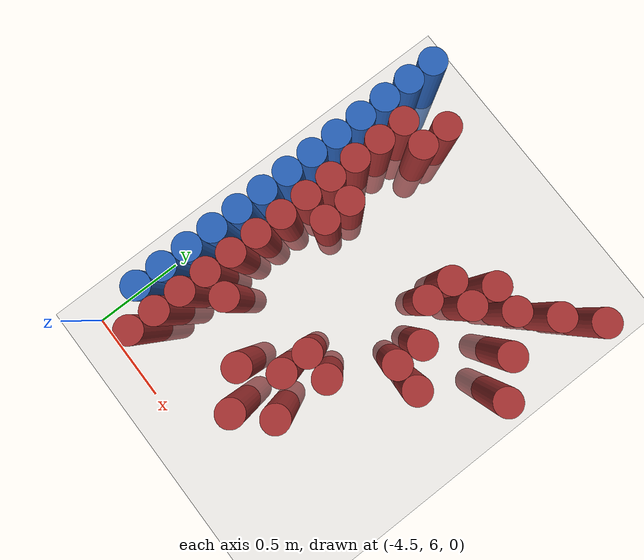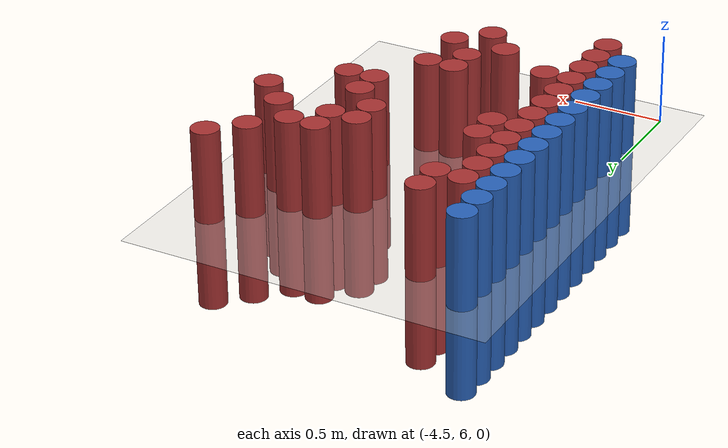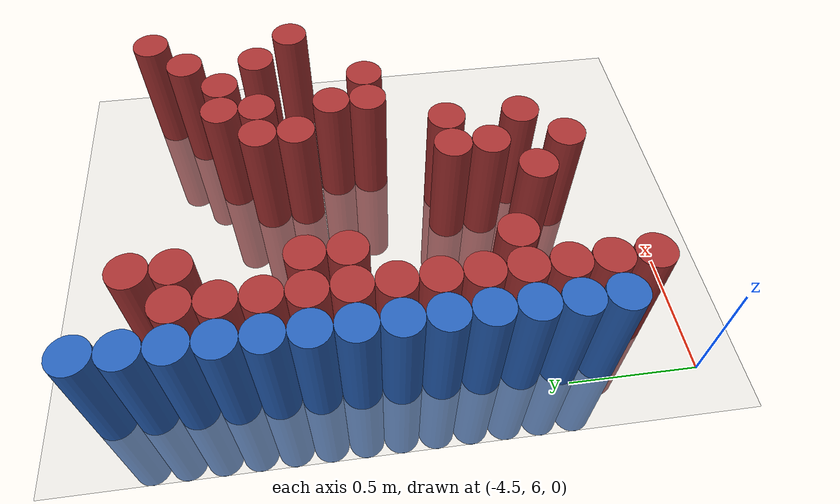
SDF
<sdf version="1.6">
 <world name="default">
  <model name="ground_plane">
   <static>1</static>
   <link name="link">
    <collision name="collision">
     <geometry><plane><normal>0 0 1</normal><size>100 100</size></plane></geometry>
     <surface><friction><ode><mu>100</mu><mu2>50</mu2></ode></friction></surface>
    </collision>
    <visual name="visual">
     <cast_shadows>0</cast_shadows>
     <geometry><plane><normal>0 0 1</normal><size>100 100</size></plane></geometry>
     <material>
      <script><uri>file://media/materials/scripts/gazebo.material</uri><name>Gazebo/Grey</name></script>
     </material>
    </visual>
   </link>
  </model>
  <model name="unit_cylinder_104">
   <static>1</static>
   <pose>-4.425000 6.375000 0.000000 0.000000 0.000000 0.000000</pose>
   <link name="link">
    <inertial>
     <mass>1</mass>
     <inertia><ixx>0.145833</ixx><ixy>0</ixy><ixz>0</ixz><iyy>0.145833</iyy><iyz>0</iyz><izz>0.125</izz></inertia>
    </inertial>
    <collision name="collision">
     <geometry><cylinder><radius>0.075000</radius><length>1</length></cylinder></geometry>
    </collision>
    <visual name="visual">
     <geometry><cylinder><radius>0.075000</radius><length>1</length></cylinder></geometry>
     <material>
      <ambient>0.152000 0.379000 0.720000 1</ambient>
      <diffuse>0.152000 0.379000 0.720000 1</diffuse>
     </material>
     <material>
      <script><name>Gazebo/Grey</name><uri>file://media/materials/scripts/gazebo.material</uri></script>
     </material>
    </visual>
   </link>
  </model>
  <model name="unit_cylinder_105">
   <static>1</static>
   <pose>-4.425000 6.525000 0.000000 0.000000 0.000000 0.000000</pose>
   <link name="link">
    <inertial>
     <mass>1</mass>
     <inertia><ixx>0.145833</ixx><ixy>0</ixy><ixz>0</ixz><iyy>0.145833</iyy><iyz>0</iyz><izz>0.125</izz></inertia>
    </inertial>
    <collision name="collision">
     <geometry><cylinder><radius>0.075000</radius><length>1</length></cylinder></geometry>
    </collision>
    <visual name="visual">
     <geometry><cylinder><radius>0.075000</radius><length>1</length></cylinder></geometry>
     <material>
      <ambient>0.152000 0.379000 0.720000 1</ambient>
      <diffuse>0.152000 0.379000 0.720000 1</diffuse>
     </material>
     <material>
      <script><name>Gazebo/Grey</name><uri>file://media/materials/scripts/gazebo.material</uri></script>
     </material>
    </visual>
   </link>
  </model>
  <model name="unit_cylinder_106">
   <static>1</static>
   <pose>-4.425000 6.675000 0.000000 0.000000 0.000000 0.000000</pose>
   <link name="link">
    <inertial>
     <mass>1</mass>
     <inertia><ixx>0.145833</ixx><ixy>0</ixy><ixz>0</ixz><iyy>0.145833</iyy><iyz>0</iyz><izz>0.125</izz></inertia>
    </inertial>
    <collision name="collision">
     <geometry><cylinder><radius>0.075000</radius><length>1</length></cylinder></geometry>
    </collision>
    <visual name="visual">
     <geometry><cylinder><radius>0.075000</radius><length>1</length></cylinder></geometry>
     <material>
      <ambient>0.152000 0.379000 0.720000 1</ambient>
      <diffuse>0.152000 0.379000 0.720000 1</diffuse>
     </material>
     <material>
      <script><name>Gazebo/Grey</name><uri>file://media/materials/scripts/gazebo.material</uri></script>
     </material>
    </visual>
   </link>
  </model>
  <model name="unit_cylinder_107">
   <static>1</static>
   <pose>-4.425000 6.825000 0.000000 0.000000 0.000000 0.000000</pose>
   <link name="link">
    <inertial>
     <mass>1</mass>
     <inertia><ixx>0.145833</ixx><ixy>0</ixy><ixz>0</ixz><iyy>0.145833</iyy><iyz>0</iyz><izz>0.125</izz></inertia>
    </inertial>
    <collision name="collision">
     <geometry><cylinder><radius>0.075000</radius><length>1</length></cylinder></geometry>
    </collision>
    <visual name="visual">
     <geometry><cylinder><radius>0.075000</radius><length>1</length></cylinder></geometry>
     <material>
      <ambient>0.152000 0.379000 0.720000 1</ambient>
      <diffuse>0.152000 0.379000 0.720000 1</diffuse>
     </material>
     <material>
      <script><name>Gazebo/Grey</name><uri>file://media/materials/scripts/gazebo.material</uri></script>
     </material>
    </visual>
   </link>
  </model>
  <model name="unit_cylinder_108">
   <static>1</static>
   <pose>-4.425000 6.975000 0.000000 0.000000 0.000000 0.000000</pose>
   <link name="link">
    <inertial>
     <mass>1</mass>
     <inertia><ixx>0.145833</ixx><ixy>0</ixy><ixz>0</ixz><iyy>0.145833</iyy><iyz>0</iyz><izz>0.125</izz></inertia>
    </inertial>
    <collision name="collision">
     <geometry><cylinder><radius>0.075000</radius><length>1</length></cylinder></geometry>
    </collision>
    <visual name="visual">
     <geometry><cylinder><radius>0.075000</radius><length>1</length></cylinder></geometry>
     <material>
      <ambient>0.152000 0.379000 0.720000 1</ambient>
      <diffuse>0.152000 0.379000 0.720000 1</diffuse>
     </material>
     <material>
      <script><name>Gazebo/Grey</name><uri>file://media/materials/scripts/gazebo.material</uri></script>
     </material>
    </visual>
   </link>
  </model>
  <model name="unit_cylinder_109">
   <static>1</static>
   <pose>-4.425000 7.125000 0.000000 0.000000 0.000000 0.000000</pose>
   <link name="link">
    <inertial>
     <mass>1</mass>
     <inertia><ixx>0.145833</ixx><ixy>0</ixy><ixz>0</ixz><iyy>0.145833</iyy><iyz>0</iyz><izz>0.125</izz></inertia>
    </inertial>
    <collision name="collision">
     <geometry><cylinder><radius>0.075000</radius><length>1</length></cylinder></geometry>
    </collision>
    <visual name="visual">
     <geometry><cylinder><radius>0.075000</radius><length>1</length></cylinder></geometry>
     <material>
      <ambient>0.152000 0.379000 0.720000 1</ambient>
      <diffuse>0.152000 0.379000 0.720000 1</diffuse>
     </material>
     <material>
      <script><name>Gazebo/Grey</name><uri>file://media/materials/scripts/gazebo.material</uri></script>
     </material>
    </visual>
   </link>
  </model>
  <model name="unit_cylinder_110">
   <static>1</static>
   <pose>-4.425000 7.275000 0.000000 0.000000 0.000000 0.000000</pose>
   <link name="link">
    <inertial>
     <mass>1</mass>
     <inertia><ixx>0.145833</ixx><ixy>0</ixy><ixz>0</ixz><iyy>0.145833</iyy><iyz>0</iyz><izz>0.125</izz></inertia>
    </inertial>
    <collision name="collision">
     <geometry><cylinder><radius>0.075000</radius><length>1</length></cylinder></geometry>
    </collision>
    <visual name="visual">
     <geometry><cylinder><radius>0.075000</radius><length>1</length></cylinder></geometry>
     <material>
      <ambient>0.152000 0.379000 0.720000 1</ambient>
      <diffuse>0.152000 0.379000 0.720000 1</diffuse>
     </material>
     <material>
      <script><name>Gazebo/Grey</name><uri>file://media/materials/scripts/gazebo.material</uri></script>
     </material>
    </visual>
   </link>
  </model>
  <model name="unit_cylinder_111">
   <static>1</static>
   <pose>-4.425000 7.425000 0.000000 0.000000 0.000000 0.000000</pose>
   <link name="link">
    <inertial>
     <mass>1</mass>
     <inertia><ixx>0.145833</ixx><ixy>0</ixy><ixz>0</ixz><iyy>0.145833</iyy><iyz>0</iyz><izz>0.125</izz></inertia>
    </inertial>
    <collision name="collision">
     <geometry><cylinder><radius>0.075000</radius><length>1</length></cylinder></geometry>
    </collision>
    <visual name="visual">
     <geometry><cylinder><radius>0.075000</radius><length>1</length></cylinder></geometry>
     <material>
      <ambient>0.152000 0.379000 0.720000 1</ambient>
      <diffuse>0.152000 0.379000 0.720000 1</diffuse>
     </material>
     <material>
      <script><name>Gazebo/Grey</name><uri>file://media/materials/scripts/gazebo.material</uri></script>
     </material>
    </visual>
   </link>
  </model>
  <model name="unit_cylinder_112">
   <static>1</static>
   <pose>-4.425000 7.575000 0.000000 0.000000 0.000000 0.000000</pose>
   <link name="link">
    <inertial>
     <mass>1</mass>
     <inertia><ixx>0.145833</ixx><ixy>0</ixy><ixz>0</ixz><iyy>0.145833</iyy><iyz>0</iyz><izz>0.125</izz></inertia>
    </inertial>
    <collision name="collision">
     <geometry><cylinder><radius>0.075000</radius><length>1</length></cylinder></geometry>
    </collision>
    <visual name="visual">
     <geometry><cylinder><radius>0.075000</radius><length>1</length></cylinder></geometry>
     <material>
      <ambient>0.152000 0.379000 0.720000 1</ambient>
      <diffuse>0.152000 0.379000 0.720000 1</diffuse>
     </material>
     <material>
      <script><name>Gazebo/Grey</name><uri>file://media/materials/scripts/gazebo.material</uri></script>
     </material>
    </visual>
   </link>
  </model>
  <model name="unit_cylinder_113">
   <static>1</static>
   <pose>-4.425000 7.725000 0.000000 0.000000 0.000000 0.000000</pose>
   <link name="link">
    <inertial>
     <mass>1</mass>
     <inertia><ixx>0.145833</ixx><ixy>0</ixy><ixz>0</ixz><iyy>0.145833</iyy><iyz>0</iyz><izz>0.125</izz></inertia>
    </inertial>
    <collision name="collision">
     <geometry><cylinder><radius>0.075000</radius><length>1</length></cylinder></geometry>
    </collision>
    <visual name="visual">
     <geometry><cylinder><radius>0.075000</radius><length>1</length></cylinder></geometry>
     <material>
      <ambient>0.152000 0.379000 0.720000 1</ambient>
      <diffuse>0.152000 0.379000 0.720000 1</diffuse>
     </material>
     <material>
      <script><name>Gazebo/Grey</name><uri>file://media/materials/scripts/gazebo.material</uri></script>
     </material>
    </visual>
   </link>
  </model>
  <model name="unit_cylinder_114">
   <static>1</static>
   <pose>-4.425000 7.875000 0.000000 0.000000 0.000000 0.000000</pose>
   <link name="link">
    <inertial>
     <mass>1</mass>
     <inertia><ixx>0.145833</ixx><ixy>0</ixy><ixz>0</ixz><iyy>0.145833</iyy><iyz>0</iyz><izz>0.125</izz></inertia>
    </inertial>
    <collision name="collision">
     <geometry><cylinder><radius>0.075000</radius><length>1</length></cylinder></geometry>
    </collision>
    <visual name="visual">
     <geometry><cylinder><radius>0.075000</radius><length>1</length></cylinder></geometry>
     <material>
      <ambient>0.152000 0.379000 0.720000 1</ambient>
      <diffuse>0.152000 0.379000 0.720000 1</diffuse>
     </material>
     <material>
      <script><name>Gazebo/Grey</name><uri>file://media/materials/scripts/gazebo.material</uri></script>
     </material>
    </visual>
   </link>
  </model>
  <model name="unit_cylinder_115">
   <static>1</static>
   <pose>-4.425000 8.025000 0.000000 0.000000 0.000000 0.000000</pose>
   <link name="link">
    <inertial>
     <mass>1</mass>
     <inertia><ixx>0.145833</ixx><ixy>0</ixy><ixz>0</ixz><iyy>0.145833</iyy><iyz>0</iyz><izz>0.125</izz></inertia>
    </inertial>
    <collision name="collision">
     <geometry><cylinder><radius>0.075000</radius><length>1</length></cylinder></geometry>
    </collision>
    <visual name="visual">
     <geometry><cylinder><radius>0.075000</radius><length>1</length></cylinder></geometry>
     <material>
      <ambient>0.152000 0.379000 0.720000 1</ambient>
      <diffuse>0.152000 0.379000 0.720000 1</diffuse>
     </material>
     <material>
      <script><name>Gazebo/Grey</name><uri>file://media/materials/scripts/gazebo.material</uri></script>
     </material>
    </visual>
   </link>
  </model>
  <model name="unit_cylinder_116">
   <static>1</static>
   <pose>-4.425000 8.175000 0.000000 0.000000 0.000000 0.000000</pose>
   <link name="link">
    <inertial>
     <mass>1</mass>
     <inertia><ixx>0.145833</ixx><ixy>0</ixy><ixz>0</ixz><iyy>0.145833</iyy><iyz>0</iyz><izz>0.125</izz></inertia>
    </inertial>
    <collision name="collision">
     <geometry><cylinder><radius>0.075000</radius><length>1</length></cylinder></geometry>
    </collision>
    <visual name="visual">
     <geometry><cylinder><radius>0.075000</radius><length>1</length></cylinder></geometry>
     <material>
      <ambient>0.152000 0.379000 0.720000 1</ambient>
      <diffuse>0.152000 0.379000 0.720000 1</diffuse>
     </material>
     <material>
      <script><name>Gazebo/Grey</name><uri>file://media/materials/scripts/gazebo.material</uri></script>
     </material>
    </visual>
   </link>
  </model>
  <model name="unit_cylinder_129">
   <static>1</static>
   <pose>-4.275000 6.225000 0.000000 0.000000 0.000000 0.000000</pose>
   <link name="link">
    <inertial>
     <mass>1</mass>
     <inertia><ixx>0.145833</ixx><ixy>0</ixy><ixz>0</ixz><iyy>0.145833</iyy><iyz>0</iyz><izz>0.125</izz></inertia>
    </inertial>
    <collision name="collision">
     <geometry><cylinder><radius>0.075000</radius><length>1</length></cylinder></geometry>
    </collision>
    <visual name="visual">
     <geometry><cylinder><radius>0.075000</radius><length>1</length></cylinder></geometry>
     <material>
      <ambient>0.648000 0.192000 0.192000 1</ambient>
      <diffuse>0.648000 0.192000 0.192000 1</diffuse>
     </material>
     <material>
      <script><name>Gazebo/Grey</name><uri>file://media/materials/scripts/gazebo.material</uri></script>
     </material>
    </visual>
   </link>
  </model>
  <model name="unit_cylinder_130">
   <static>1</static>
   <pose>-4.275000 6.375000 0.000000 0.000000 0.000000 0.000000</pose>
   <link name="link">
    <inertial>
     <mass>1</mass>
     <inertia><ixx>0.145833</ixx><ixy>0</ixy><ixz>0</ixz><iyy>0.145833</iyy><iyz>0</iyz><izz>0.125</izz></inertia>
    </inertial>
    <collision name="collision">
     <geometry><cylinder><radius>0.075000</radius><length>1</length></cylinder></geometry>
    </collision>
    <visual name="visual">
     <geometry><cylinder><radius>0.075000</radius><length>1</length></cylinder></geometry>
     <material>
      <ambient>0.648000 0.192000 0.192000 1</ambient>
      <diffuse>0.648000 0.192000 0.192000 1</diffuse>
     </material>
     <material>
      <script><name>Gazebo/Grey</name><uri>file://media/materials/scripts/gazebo.material</uri></script>
     </material>
    </visual>
   </link>
  </model>
  <model name="unit_cylinder_131">
   <static>1</static>
   <pose>-4.275000 6.525000 0.000000 0.000000 0.000000 0.000000</pose>
   <link name="link">
    <inertial>
     <mass>1</mass>
     <inertia><ixx>0.145833</ixx><ixy>0</ixy><ixz>0</ixz><iyy>0.145833</iyy><iyz>0</iyz><izz>0.125</izz></inertia>
    </inertial>
    <collision name="collision">
     <geometry><cylinder><radius>0.075000</radius><length>1</length></cylinder></geometry>
    </collision>
    <visual name="visual">
     <geometry><cylinder><radius>0.075000</radius><length>1</length></cylinder></geometry>
     <material>
      <ambient>0.648000 0.192000 0.192000 1</ambient>
      <diffuse>0.648000 0.192000 0.192000 1</diffuse>
     </material>
     <material>
      <script><name>Gazebo/Grey</name><uri>file://media/materials/scripts/gazebo.material</uri></script>
     </material>
    </visual>
   </link>
  </model>
  <model name="unit_cylinder_132">
   <static>1</static>
   <pose>-4.275000 6.675000 0.000000 0.000000 0.000000 0.000000</pose>
   <link name="link">
    <inertial>
     <mass>1</mass>
     <inertia><ixx>0.145833</ixx><ixy>0</ixy><ixz>0</ixz><iyy>0.145833</iyy><iyz>0</iyz><izz>0.125</izz></inertia>
    </inertial>
    <collision name="collision">
     <geometry><cylinder><radius>0.075000</radius><length>1</length></cylinder></geometry>
    </collision>
    <visual name="visual">
     <geometry><cylinder><radius>0.075000</radius><length>1</length></cylinder></geometry>
     <material>
      <ambient>0.648000 0.192000 0.192000 1</ambient>
      <diffuse>0.648000 0.192000 0.192000 1</diffuse>
     </material>
     <material>
      <script><name>Gazebo/Grey</name><uri>file://media/materials/scripts/gazebo.material</uri></script>
     </material>
    </visual>
   </link>
  </model>
  <model name="unit_cylinder_133">
   <static>1</static>
   <pose>-4.275000 6.825000 0.000000 0.000000 0.000000 0.000000</pose>
   <link name="link">
    <inertial>
     <mass>1</mass>
     <inertia><ixx>0.145833</ixx><ixy>0</ixy><ixz>0</ixz><iyy>0.145833</iyy><iyz>0</iyz><izz>0.125</izz></inertia>
    </inertial>
    <collision name="collision">
     <geometry><cylinder><radius>0.075000</radius><length>1</length></cylinder></geometry>
    </collision>
    <visual name="visual">
     <geometry><cylinder><radius>0.075000</radius><length>1</length></cylinder></geometry>
     <material>
      <ambient>0.648000 0.192000 0.192000 1</ambient>
      <diffuse>0.648000 0.192000 0.192000 1</diffuse>
     </material>
     <material>
      <script><name>Gazebo/Grey</name><uri>file://media/materials/scripts/gazebo.material</uri></script>
     </material>
    </visual>
   </link>
  </model>
  <model name="unit_cylinder_134">
   <static>1</static>
   <pose>-4.275000 6.975000 0.000000 0.000000 0.000000 0.000000</pose>
   <link name="link">
    <inertial>
     <mass>1</mass>
     <inertia><ixx>0.145833</ixx><ixy>0</ixy><ixz>0</ixz><iyy>0.145833</iyy><iyz>0</iyz><izz>0.125</izz></inertia>
    </inertial>
    <collision name="collision">
     <geometry><cylinder><radius>0.075000</radius><length>1</length></cylinder></geometry>
    </collision>
    <visual name="visual">
     <geometry><cylinder><radius>0.075000</radius><length>1</length></cylinder></geometry>
     <material>
      <ambient>0.648000 0.192000 0.192000 1</ambient>
      <diffuse>0.648000 0.192000 0.192000 1</diffuse>
     </material>
     <material>
      <script><name>Gazebo/Grey</name><uri>file://media/materials/scripts/gazebo.material</uri></script>
     </material>
    </visual>
   </link>
  </model>
  <model name="unit_cylinder_135">
   <static>1</static>
   <pose>-4.275000 7.125000 0.000000 0.000000 0.000000 0.000000</pose>
   <link name="link">
    <inertial>
     <mass>1</mass>
     <inertia><ixx>0.145833</ixx><ixy>0</ixy><ixz>0</ixz><iyy>0.145833</iyy><iyz>0</iyz><izz>0.125</izz></inertia>
    </inertial>
    <collision name="collision">
     <geometry><cylinder><radius>0.075000</radius><length>1</length></cylinder></geometry>
    </collision>
    <visual name="visual">
     <geometry><cylinder><radius>0.075000</radius><length>1</length></cylinder></geometry>
     <material>
      <ambient>0.648000 0.192000 0.192000 1</ambient>
      <diffuse>0.648000 0.192000 0.192000 1</diffuse>
     </material>
     <material>
      <script><name>Gazebo/Grey</name><uri>file://media/materials/scripts/gazebo.material</uri></script>
     </material>
    </visual>
   </link>
  </model>
  <model name="unit_cylinder_136">
   <static>1</static>
   <pose>-4.275000 7.275000 0.000000 0.000000 0.000000 0.000000</pose>
   <link name="link">
    <inertial>
     <mass>1</mass>
     <inertia><ixx>0.145833</ixx><ixy>0</ixy><ixz>0</ixz><iyy>0.145833</iyy><iyz>0</iyz><izz>0.125</izz></inertia>
    </inertial>
    <collision name="collision">
     <geometry><cylinder><radius>0.075000</radius><length>1</length></cylinder></geometry>
    </collision>
    <visual name="visual">
     <geometry><cylinder><radius>0.075000</radius><length>1</length></cylinder></geometry>
     <material>
      <ambient>0.648000 0.192000 0.192000 1</ambient>
      <diffuse>0.648000 0.192000 0.192000 1</diffuse>
     </material>
     <material>
      <script><name>Gazebo/Grey</name><uri>file://media/materials/scripts/gazebo.material</uri></script>
     </material>
    </visual>
   </link>
  </model>
  <model name="unit_cylinder_137">
   <static>1</static>
   <pose>-4.275000 7.425000 0.000000 0.000000 0.000000 0.000000</pose>
   <link name="link">
    <inertial>
     <mass>1</mass>
     <inertia><ixx>0.145833</ixx><ixy>0</ixy><ixz>0</ixz><iyy>0.145833</iyy><iyz>0</iyz><izz>0.125</izz></inertia>
    </inertial>
    <collision name="collision">
     <geometry><cylinder><radius>0.075000</radius><length>1</length></cylinder></geometry>
    </collision>
    <visual name="visual">
     <geometry><cylinder><radius>0.075000</radius><length>1</length></cylinder></geometry>
     <material>
      <ambient>0.648000 0.192000 0.192000 1</ambient>
      <diffuse>0.648000 0.192000 0.192000 1</diffuse>
     </material>
     <material>
      <script><name>Gazebo/Grey</name><uri>file://media/materials/scripts/gazebo.material</uri></script>
     </material>
    </visual>
   </link>
  </model>
  <model name="unit_cylinder_138">
   <static>1</static>
   <pose>-4.275000 7.575000 0.000000 0.000000 0.000000 0.000000</pose>
   <link name="link">
    <inertial>
     <mass>1</mass>
     <inertia><ixx>0.145833</ixx><ixy>0</ixy><ixz>0</ixz><iyy>0.145833</iyy><iyz>0</iyz><izz>0.125</izz></inertia>
    </inertial>
    <collision name="collision">
     <geometry><cylinder><radius>0.075000</radius><length>1</length></cylinder></geometry>
    </collision>
    <visual name="visual">
     <geometry><cylinder><radius>0.075000</radius><length>1</length></cylinder></geometry>
     <material>
      <ambient>0.648000 0.192000 0.192000 1</ambient>
      <diffuse>0.648000 0.192000 0.192000 1</diffuse>
     </material>
     <material>
      <script><name>Gazebo/Grey</name><uri>file://media/materials/scripts/gazebo.material</uri></script>
     </material>
    </visual>
   </link>
  </model>
  <model name="unit_cylinder_139">
   <static>1</static>
   <pose>-4.275000 7.725000 0.000000 0.000000 0.000000 0.000000</pose>
   <link name="link">
    <inertial>
     <mass>1</mass>
     <inertia><ixx>0.145833</ixx><ixy>0</ixy><ixz>0</ixz><iyy>0.145833</iyy><iyz>0</iyz><izz>0.125</izz></inertia>
    </inertial>
    <collision name="collision">
     <geometry><cylinder><radius>0.075000</radius><length>1</length></cylinder></geometry>
    </collision>
    <visual name="visual">
     <geometry><cylinder><radius>0.075000</radius><length>1</length></cylinder></geometry>
     <material>
      <ambient>0.648000 0.192000 0.192000 1</ambient>
      <diffuse>0.648000 0.192000 0.192000 1</diffuse>
     </material>
     <material>
      <script><name>Gazebo/Grey</name><uri>file://media/materials/scripts/gazebo.material</uri></script>
     </material>
    </visual>
   </link>
  </model>
  <model name="unit_cylinder_140">
   <static>1</static>
   <pose>-4.275000 7.875000 0.000000 0.000000 0.000000 0.000000</pose>
   <link name="link">
    <inertial>
     <mass>1</mass>
     <inertia><ixx>0.145833</ixx><ixy>0</ixy><ixz>0</ixz><iyy>0.145833</iyy><iyz>0</iyz><izz>0.125</izz></inertia>
    </inertial>
    <collision name="collision">
     <geometry><cylinder><radius>0.075000</radius><length>1</length></cylinder></geometry>
    </collision>
    <visual name="visual">
     <geometry><cylinder><radius>0.075000</radius><length>1</length></cylinder></geometry>
     <material>
      <ambient>0.648000 0.192000 0.192000 1</ambient>
      <diffuse>0.648000 0.192000 0.192000 1</diffuse>
     </material>
     <material>
      <script><name>Gazebo/Grey</name><uri>file://media/materials/scripts/gazebo.material</uri></script>
     </material>
    </visual>
   </link>
  </model>
  <model name="unit_cylinder_144">
   <static>1</static>
   <pose>-4.125000 6.675000 0.000000 0.000000 0.000000 0.000000</pose>
   <link name="link">
    <inertial>
     <mass>1</mass>
     <inertia><ixx>0.145833</ixx><ixy>0</ixy><ixz>0</ixz><iyy>0.145833</iyy><iyz>0</iyz><izz>0.125</izz></inertia>
    </inertial>
    <collision name="collision">
     <geometry><cylinder><radius>0.075000</radius><length>1</length></cylinder></geometry>
    </collision>
    <visual name="visual">
     <geometry><cylinder><radius>0.075000</radius><length>1</length></cylinder></geometry>
     <material>
      <ambient>0.648000 0.192000 0.192000 1</ambient>
      <diffuse>0.648000 0.192000 0.192000 1</diffuse>
     </material>
     <material>
      <script><name>Gazebo/Grey</name><uri>file://media/materials/scripts/gazebo.material</uri></script>
     </material>
    </visual>
   </link>
  </model>
  <model name="unit_cylinder_145">
   <static>1</static>
   <pose>-4.125000 7.275000 0.000000 0.000000 0.000000 0.000000</pose>
   <link name="link">
    <inertial>
     <mass>1</mass>
     <inertia><ixx>0.145833</ixx><ixy>0</ixy><ixz>0</ixz><iyy>0.145833</iyy><iyz>0</iyz><izz>0.125</izz></inertia>
    </inertial>
    <collision name="collision">
     <geometry><cylinder><radius>0.075000</radius><length>1</length></cylinder></geometry>
    </collision>
    <visual name="visual">
     <geometry><cylinder><radius>0.075000</radius><length>1</length></cylinder></geometry>
     <material>
      <ambient>0.648000 0.192000 0.192000 1</ambient>
      <diffuse>0.648000 0.192000 0.192000 1</diffuse>
     </material>
     <material>
      <script><name>Gazebo/Grey</name><uri>file://media/materials/scripts/gazebo.material</uri></script>
     </material>
    </visual>
   </link>
  </model>
  <model name="unit_cylinder_146">
   <static>1</static>
   <pose>-4.125000 7.425000 0.000000 0.000000 0.000000 0.000000</pose>
   <link name="link">
    <inertial>
     <mass>1</mass>
     <inertia><ixx>0.145833</ixx><ixy>0</ixy><ixz>0</ixz><iyy>0.145833</iyy><iyz>0</iyz><izz>0.125</izz></inertia>
    </inertial>
    <collision name="collision">
     <geometry><cylinder><radius>0.075000</radius><length>1</length></cylinder></geometry>
    </collision>
    <visual name="visual">
     <geometry><cylinder><radius>0.075000</radius><length>1</length></cylinder></geometry>
     <material>
      <ambient>0.648000 0.192000 0.192000 1</ambient>
      <diffuse>0.648000 0.192000 0.192000 1</diffuse>
     </material>
     <material>
      <script><name>Gazebo/Grey</name><uri>file://media/materials/scripts/gazebo.material</uri></script>
     </material>
    </visual>
   </link>
  </model>
  <model name="unit_cylinder_147">
   <static>1</static>
   <pose>-4.125000 7.875000 0.000000 0.000000 0.000000 0.000000</pose>
   <link name="link">
    <inertial>
     <mass>1</mass>
     <inertia><ixx>0.145833</ixx><ixy>0</ixy><ixz>0</ixz><iyy>0.145833</iyy><iyz>0</iyz><izz>0.125</izz></inertia>
    </inertial>
    <collision name="collision">
     <geometry><cylinder><radius>0.075000</radius><length>1</length></cylinder></geometry>
    </collision>
    <visual name="visual">
     <geometry><cylinder><radius>0.075000</radius><length>1</length></cylinder></geometry>
     <material>
      <ambient>0.648000 0.192000 0.192000 1</ambient>
      <diffuse>0.648000 0.192000 0.192000 1</diffuse>
     </material>
     <material>
      <script><name>Gazebo/Grey</name><uri>file://media/materials/scripts/gazebo.material</uri></script>
     </material>
    </visual>
   </link>
  </model>
  <model name="unit_cylinder_148">
   <static>1</static>
   <pose>-4.125000 8.025000 0.000000 0.000000 0.000000 0.000000</pose>
   <link name="link">
    <inertial>
     <mass>1</mass>
     <inertia><ixx>0.145833</ixx><ixy>0</ixy><ixz>0</ixz><iyy>0.145833</iyy><iyz>0</iyz><izz>0.125</izz></inertia>
    </inertial>
    <collision name="collision">
     <geometry><cylinder><radius>0.075000</radius><length>1</length></cylinder></geometry>
    </collision>
    <visual name="visual">
     <geometry><cylinder><radius>0.075000</radius><length>1</length></cylinder></geometry>
     <material>
      <ambient>0.648000 0.192000 0.192000 1</ambient>
      <diffuse>0.648000 0.192000 0.192000 1</diffuse>
     </material>
     <material>
      <script><name>Gazebo/Grey</name><uri>file://media/materials/scripts/gazebo.material</uri></script>
     </material>
    </visual>
   </link>
  </model>
  <model name="unit_cylinder_163">
   <static>1</static>
   <pose>-3.825000 6.525000 0.000000 0.000000 0.000000 0.000000</pose>
   <link name="link">
    <inertial>
     <mass>1</mass>
     <inertia><ixx>0.145833</ixx><ixy>0</ixy><ixz>0</ixz><iyy>0.145833</iyy><iyz>0</iyz><izz>0.125</izz></inertia>
    </inertial>
    <collision name="collision">
     <geometry><cylinder><radius>0.075000</radius><length>1</length></cylinder></geometry>
    </collision>
    <visual name="visual">
     <geometry><cylinder><radius>0.075000</radius><length>1</length></cylinder></geometry>
     <material>
      <ambient>0.648000 0.192000 0.192000 1</ambient>
      <diffuse>0.648000 0.192000 0.192000 1</diffuse>
     </material>
     <material>
      <script><name>Gazebo/Grey</name><uri>file://media/materials/scripts/gazebo.material</uri></script>
     </material>
    </visual>
   </link>
  </model>
  <model name="unit_cylinder_169">
   <static>1</static>
   <pose>-3.675000 6.375000 0.000000 0.000000 0.000000 0.000000</pose>
   <link name="link">
    <inertial>
     <mass>1</mass>
     <inertia><ixx>0.145833</ixx><ixy>0</ixy><ixz>0</ixz><iyy>0.145833</iyy><iyz>0</iyz><izz>0.125</izz></inertia>
    </inertial>
    <collision name="collision">
     <geometry><cylinder><radius>0.075000</radius><length>1</length></cylinder></geometry>
    </collision>
    <visual name="visual">
     <geometry><cylinder><radius>0.075000</radius><length>1</length></cylinder></geometry>
     <material>
      <ambient>0.648000 0.192000 0.192000 1</ambient>
      <diffuse>0.648000 0.192000 0.192000 1</diffuse>
     </material>
     <material>
      <script><name>Gazebo/Grey</name><uri>file://media/materials/scripts/gazebo.material</uri></script>
     </material>
    </visual>
   </link>
  </model>
  <model name="unit_cylinder_170">
   <static>1</static>
   <pose>-3.675000 6.675000 0.000000 0.000000 0.000000 0.000000</pose>
   <link name="link">
    <inertial>
     <mass>1</mass>
     <inertia><ixx>0.145833</ixx><ixy>0</ixy><ixz>0</ixz><iyy>0.145833</iyy><iyz>0</iyz><izz>0.125</izz></inertia>
    </inertial>
    <collision name="collision">
     <geometry><cylinder><radius>0.075000</radius><length>1</length></cylinder></geometry>
    </collision>
    <visual name="visual">
     <geometry><cylinder><radius>0.075000</radius><length>1</length></cylinder></geometry>
     <material>
      <ambient>0.648000 0.192000 0.192000 1</ambient>
      <diffuse>0.648000 0.192000 0.192000 1</diffuse>
     </material>
     <material>
      <script><name>Gazebo/Grey</name><uri>file://media/materials/scripts/gazebo.material</uri></script>
     </material>
    </visual>
   </link>
  </model>
  <model name="unit_cylinder_171">
   <static>1</static>
   <pose>-3.675000 6.825000 0.000000 0.000000 0.000000 0.000000</pose>
   <link name="link">
    <inertial>
     <mass>1</mass>
     <inertia><ixx>0.145833</ixx><ixy>0</ixy><ixz>0</ixz><iyy>0.145833</iyy><iyz>0</iyz><izz>0.125</izz></inertia>
    </inertial>
    <collision name="collision">
     <geometry><cylinder><radius>0.075000</radius><length>1</length></cylinder></geometry>
    </collision>
    <visual name="visual">
     <geometry><cylinder><radius>0.075000</radius><length>1</length></cylinder></geometry>
     <material>
      <ambient>0.648000 0.192000 0.192000 1</ambient>
      <diffuse>0.648000 0.192000 0.192000 1</diffuse>
     </material>
     <material>
      <script><name>Gazebo/Grey</name><uri>file://media/materials/scripts/gazebo.material</uri></script>
     </material>
    </visual>
   </link>
  </model>
  <model name="unit_cylinder_174">
   <static>1</static>
   <pose>-3.525000 6.525000 0.000000 0.000000 0.000000 0.000000</pose>
   <link name="link">
    <inertial>
     <mass>1</mass>
     <inertia><ixx>0.145833</ixx><ixy>0</ixy><ixz>0</ixz><iyy>0.145833</iyy><iyz>0</iyz><izz>0.125</izz></inertia>
    </inertial>
    <collision name="collision">
     <geometry><cylinder><radius>0.075000</radius><length>1</length></cylinder></geometry>
    </collision>
    <visual name="visual">
     <geometry><cylinder><radius>0.075000</radius><length>1</length></cylinder></geometry>
     <material>
      <ambient>0.648000 0.192000 0.192000 1</ambient>
      <diffuse>0.648000 0.192000 0.192000 1</diffuse>
     </material>
     <material>
      <script><name>Gazebo/Grey</name><uri>file://media/materials/scripts/gazebo.material</uri></script>
     </material>
    </visual>
   </link>
  </model>
  <model name="unit_cylinder_175">
   <static>1</static>
   <pose>-3.525000 6.825000 0.000000 0.000000 0.000000 0.000000</pose>
   <link name="link">
    <inertial>
     <mass>1</mass>
     <inertia><ixx>0.145833</ixx><ixy>0</ixy><ixz>0</ixz><iyy>0.145833</iyy><iyz>0</iyz><izz>0.125</izz></inertia>
    </inertial>
    <collision name="collision">
     <geometry><cylinder><radius>0.075000</radius><length>1</length></cylinder></geometry>
    </collision>
    <visual name="visual">
     <geometry><cylinder><radius>0.075000</radius><length>1</length></cylinder></geometry>
     <material>
      <ambient>0.648000 0.192000 0.192000 1</ambient>
      <diffuse>0.648000 0.192000 0.192000 1</diffuse>
     </material>
     <material>
      <script><name>Gazebo/Grey</name><uri>file://media/materials/scripts/gazebo.material</uri></script>
     </material>
    </visual>
   </link>
  </model>
  <model name="unit_cylinder_176">
   <static>1</static>
   <pose>-3.525000 7.425000 0.000000 0.000000 0.000000 0.000000</pose>
   <link name="link">
    <inertial>
     <mass>1</mass>
     <inertia><ixx>0.145833</ixx><ixy>0</ixy><ixz>0</ixz><iyy>0.145833</iyy><iyz>0</iyz><izz>0.125</izz></inertia>
    </inertial>
    <collision name="collision">
     <geometry><cylinder><radius>0.075000</radius><length>1</length></cylinder></geometry>
    </collision>
    <visual name="visual">
     <geometry><cylinder><radius>0.075000</radius><length>1</length></cylinder></geometry>
     <material>
      <ambient>0.648000 0.192000 0.192000 1</ambient>
      <diffuse>0.648000 0.192000 0.192000 1</diffuse>
     </material>
     <material>
      <script><name>Gazebo/Grey</name><uri>file://media/materials/scripts/gazebo.material</uri></script>
     </material>
    </visual>
   </link>
  </model>
  <model name="unit_cylinder_177">
   <static>1</static>
   <pose>-3.525000 7.575000 0.000000 0.000000 0.000000 0.000000</pose>
   <link name="link">
    <inertial>
     <mass>1</mass>
     <inertia><ixx>0.145833</ixx><ixy>0</ixy><ixz>0</ixz><iyy>0.145833</iyy><iyz>0</iyz><izz>0.125</izz></inertia>
    </inertial>
    <collision name="collision">
     <geometry><cylinder><radius>0.075000</radius><length>1</length></cylinder></geometry>
    </collision>
    <visual name="visual">
     <geometry><cylinder><radius>0.075000</radius><length>1</length></cylinder></geometry>
     <material>
      <ambient>0.648000 0.192000 0.192000 1</ambient>
      <diffuse>0.648000 0.192000 0.192000 1</diffuse>
     </material>
     <material>
      <script><name>Gazebo/Grey</name><uri>file://media/materials/scripts/gazebo.material</uri></script>
     </material>
    </visual>
   </link>
  </model>
  <model name="unit_cylinder_178">
   <static>1</static>
   <pose>-3.375000 7.125000 0.000000 0.000000 0.000000 0.000000</pose>
   <link name="link">
    <inertial>
     <mass>1</mass>
     <inertia><ixx>0.145833</ixx><ixy>0</ixy><ixz>0</ixz><iyy>0.145833</iyy><iyz>0</iyz><izz>0.125</izz></inertia>
    </inertial>
    <collision name="collision">
     <geometry><cylinder><radius>0.075000</radius><length>1</length></cylinder></geometry>
    </collision>
    <visual name="visual">
     <geometry><cylinder><radius>0.075000</radius><length>1</length></cylinder></geometry>
     <material>
      <ambient>0.648000 0.192000 0.192000 1</ambient>
      <diffuse>0.648000 0.192000 0.192000 1</diffuse>
     </material>
     <material>
      <script><name>Gazebo/Grey</name><uri>file://media/materials/scripts/gazebo.material</uri></script>
     </material>
    </visual>
   </link>
  </model>
  <model name="unit_cylinder_179">
   <static>1</static>
   <pose>-3.375000 7.275000 0.000000 0.000000 0.000000 0.000000</pose>
   <link name="link">
    <inertial>
     <mass>1</mass>
     <inertia><ixx>0.145833</ixx><ixy>0</ixy><ixz>0</ixz><iyy>0.145833</iyy><iyz>0</iyz><izz>0.125</izz></inertia>
    </inertial>
    <collision name="collision">
     <geometry><cylinder><radius>0.075000</radius><length>1</length></cylinder></geometry>
    </collision>
    <visual name="visual">
     <geometry><cylinder><radius>0.075000</radius><length>1</length></cylinder></geometry>
     <material>
      <ambient>0.648000 0.192000 0.192000 1</ambient>
      <diffuse>0.648000 0.192000 0.192000 1</diffuse>
     </material>
     <material>
      <script><name>Gazebo/Grey</name><uri>file://media/materials/scripts/gazebo.material</uri></script>
     </material>
    </visual>
   </link>
  </model>
  <model name="unit_cylinder_180">
   <static>1</static>
   <pose>-3.375000 7.575000 0.000000 0.000000 0.000000 0.000000</pose>
   <link name="link">
    <inertial>
     <mass>1</mass>
     <inertia><ixx>0.145833</ixx><ixy>0</ixy><ixz>0</ixz><iyy>0.145833</iyy><iyz>0</iyz><izz>0.125</izz></inertia>
    </inertial>
    <collision name="collision">
     <geometry><cylinder><radius>0.075000</radius><length>1</length></cylinder></geometry>
    </collision>
    <visual name="visual">
     <geometry><cylinder><radius>0.075000</radius><length>1</length></cylinder></geometry>
     <material>
      <ambient>0.648000 0.192000 0.192000 1</ambient>
      <diffuse>0.648000 0.192000 0.192000 1</diffuse>
     </material>
     <material>
      <script><name>Gazebo/Grey</name><uri>file://media/materials/scripts/gazebo.material</uri></script>
     </material>
    </visual>
   </link>
  </model>
  <model name="unit_cylinder_181">
   <static>1</static>
   <pose>-3.375000 7.725000 0.000000 0.000000 0.000000 0.000000</pose>
   <link name="link">
    <inertial>
     <mass>1</mass>
     <inertia><ixx>0.145833</ixx><ixy>0</ixy><ixz>0</ixz><iyy>0.145833</iyy><iyz>0</iyz><izz>0.125</izz></inertia>
    </inertial>
    <collision name="collision">
     <geometry><cylinder><radius>0.075000</radius><length>1</length></cylinder></geometry>
    </collision>
    <visual name="visual">
     <geometry><cylinder><radius>0.075000</radius><length>1</length></cylinder></geometry>
     <material>
      <ambient>0.648000 0.192000 0.192000 1</ambient>
      <diffuse>0.648000 0.192000 0.192000 1</diffuse>
     </material>
     <material>
      <script><name>Gazebo/Grey</name><uri>file://media/materials/scripts/gazebo.material</uri></script>
     </material>
    </visual>
   </link>
  </model>
  <model name="unit_cylinder_183">
   <static>1</static>
   <pose>-3.225000 7.125000 0.000000 0.000000 0.000000 0.000000</pose>
   <link name="link">
    <inertial>
     <mass>1</mass>
     <inertia><ixx>0.145833</ixx><ixy>0</ixy><ixz>0</ixz><iyy>0.145833</iyy><iyz>0</iyz><izz>0.125</izz></inertia>
    </inertial>
    <collision name="collision">
     <geometry><cylinder><radius>0.075000</radius><length>1</length></cylinder></geometry>
    </collision>
    <visual name="visual">
     <geometry><cylinder><radius>0.075000</radius><length>1</length></cylinder></geometry>
     <material>
      <ambient>0.648000 0.192000 0.192000 1</ambient>
      <diffuse>0.648000 0.192000 0.192000 1</diffuse>
     </material>
     <material>
      <script><name>Gazebo/Grey</name><uri>file://media/materials/scripts/gazebo.material</uri></script>
     </material>
    </visual>
   </link>
  </model>
  <model name="unit_cylinder_184">
   <static>1</static>
   <pose>-3.225000 7.725000 0.000000 0.000000 0.000000 0.000000</pose>
   <link name="link">
    <inertial>
     <mass>1</mass>
     <inertia><ixx>0.145833</ixx><ixy>0</ixy><ixz>0</ixz><iyy>0.145833</iyy><iyz>0</iyz><izz>0.125</izz></inertia>
    </inertial>
    <collision name="collision">
     <geometry><cylinder><radius>0.075000</radius><length>1</length></cylinder></geometry>
    </collision>
    <visual name="visual">
     <geometry><cylinder><radius>0.075000</radius><length>1</length></cylinder></geometry>
     <material>
      <ambient>0.648000 0.192000 0.192000 1</ambient>
      <diffuse>0.648000 0.192000 0.192000 1</diffuse>
     </material>
     <material>
      <script><name>Gazebo/Grey</name><uri>file://media/materials/scripts/gazebo.material</uri></script>
     </material>
    </visual>
   </link>
  </model>
  <model name="unit_cylinder_188">
   <static>1</static>
   <pose>-3.075000 7.575000 0.000000 0.000000 0.000000 0.000000</pose>
   <link name="link">
    <inertial>
     <mass>1</mass>
     <inertia><ixx>0.145833</ixx><ixy>0</ixy><ixz>0</ixz><iyy>0.145833</iyy><iyz>0</iyz><izz>0.125</izz></inertia>
    </inertial>
    <collision name="collision">
     <geometry><cylinder><radius>0.075000</radius><length>1</length></cylinder></geometry>
    </collision>
    <visual name="visual">
     <geometry><cylinder><radius>0.075000</radius><length>1</length></cylinder></geometry>
     <material>
      <ambient>0.648000 0.192000 0.192000 1</ambient>
      <diffuse>0.648000 0.192000 0.192000 1</diffuse>
     </material>
     <material>
      <script><name>Gazebo/Grey</name><uri>file://media/materials/scripts/gazebo.material</uri></script>
     </material>
    </visual>
   </link>
  </model>
  <model name="unit_cylinder_189">
   <static>1</static>
   <pose>-3.075000 7.875000 0.000000 0.000000 0.000000 0.000000</pose>
   <link name="link">
    <inertial>
     <mass>1</mass>
     <inertia><ixx>0.145833</ixx><ixy>0</ixy><ixz>0</ixz><iyy>0.145833</iyy><iyz>0</iyz><izz>0.125</izz></inertia>
    </inertial>
    <collision name="collision">
     <geometry><cylinder><radius>0.075000</radius><length>1</length></cylinder></geometry>
    </collision>
    <visual name="visual">
     <geometry><cylinder><radius>0.075000</radius><length>1</length></cylinder></geometry>
     <material>
      <ambient>0.648000 0.192000 0.192000 1</ambient>
      <diffuse>0.648000 0.192000 0.192000 1</diffuse>
     </material>
     <material>
      <script><name>Gazebo/Grey</name><uri>file://media/materials/scripts/gazebo.material</uri></script>
     </material>
    </visual>
   </link>
  </model>
  <model name="unit_cylinder_198">
   <static>1</static>
   <pose>-2.925000 7.425000 0.000000 0.000000 0.000000 0.000000</pose>
   <link name="link">
    <inertial>
     <mass>1</mass>
     <inertia><ixx>0.145833</ixx><ixy>0</ixy><ixz>0</ixz><iyy>0.145833</iyy><iyz>0</iyz><izz>0.125</izz></inertia>
    </inertial>
    <collision name="collision">
     <geometry><cylinder><radius>0.075000</radius><length>1</length></cylinder></geometry>
    </collision>
    <visual name="visual">
     <geometry><cylinder><radius>0.075000</radius><length>1</length></cylinder></geometry>
     <material>
      <ambient>0.648000 0.192000 0.192000 1</ambient>
      <diffuse>0.648000 0.192000 0.192000 1</diffuse>
     </material>
     <material>
      <script><name>Gazebo/Grey</name><uri>file://media/materials/scripts/gazebo.material</uri></script>
     </material>
    </visual>
   </link>
  </model>
  <model name="unit_cylinder_199">
   <static>1</static>
   <pose>-2.925000 8.025000 0.000000 0.000000 0.000000 0.000000</pose>
   <link name="link">
    <inertial>
     <mass>1</mass>
     <inertia><ixx>0.145833</ixx><ixy>0</ixy><ixz>0</ixz><iyy>0.145833</iyy><iyz>0</iyz><izz>0.125</izz></inertia>
    </inertial>
    <collision name="collision">
     <geometry><cylinder><radius>0.075000</radius><length>1</length></cylinder></geometry>
    </collision>
    <visual name="visual">
     <geometry><cylinder><radius>0.075000</radius><length>1</length></cylinder></geometry>
     <material>
      <ambient>0.648000 0.192000 0.192000 1</ambient>
      <diffuse>0.648000 0.192000 0.192000 1</diffuse>
     </material>
     <material>
      <script><name>Gazebo/Grey</name><uri>file://media/materials/scripts/gazebo.material</uri></script>
     </material>
    </visual>
   </link>
  </model>
 </world>
</sdf>
